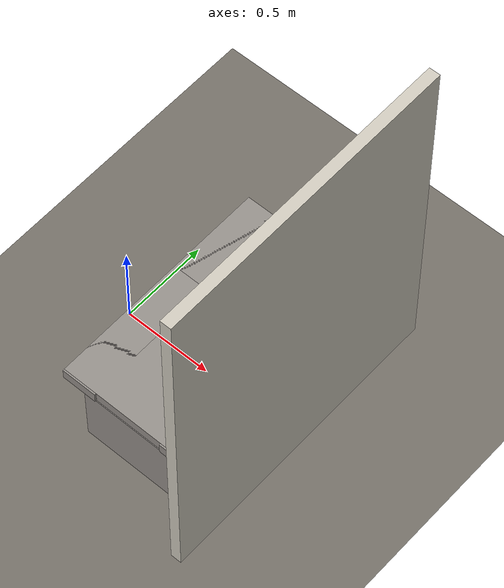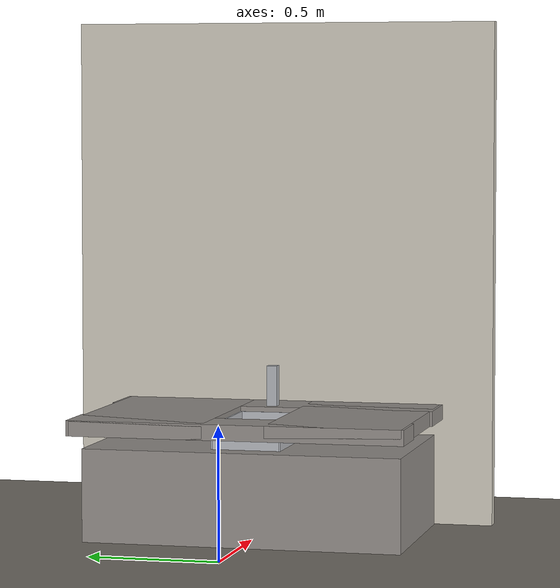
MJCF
<mujoco model="real_env_4_sink">
  <compiler angle="radian" autolimits="true" boundmass="0" balanceinertia="true"/>
  <option impratio="10" gravity="0 0 -9.8" integrator="implicitfast" cone="elliptic" jacobian="sparse" noslip_iterations="4">
    <flag multiccd="enable" contact="enable" warmstart="enable"/>
  </option>
  <size njmax="8000" nconmax="8000"/>
  <visual><global offwidth="1280" offheight="720"/><map znear="0.001"/>
    <headlight ambient="0.42 0.42 0.42" diffuse="0.55 0.55 0.55"/></visual>
  <asset>
    <texture name="woodtex" type="2d" builtin="flat" rgb1="0.58 0.56 0.54" width="32" height="32"/>
    <material name="wood" texture="woodtex" reflectance="0.05"/>
    <texture name="wood2tex" type="2d" builtin="flat" rgb1="0.42 0.40 0.38" width="32" height="32"/>
    <material name="wood2" texture="wood2tex" reflectance="0.05"/>
    <texture name="floortex" type="2d" builtin="checker" rgb1="0.49 0.47 0.44" rgb2="0.42 0.40 0.37" width="300" height="300"/>
    <material name="floormat" texture="floortex" texrepeat="10 10" reflectance="0.05"/>
  </asset>
  <default>
    <default class="furniture">
      <geom contype="8" conaffinity="15" group="0" friction="0.9 0.9 0.001"
            solref="0.02 1" solimp="0.998 0.998 0.001" density="700" material="wood"/>
    </default>
    <default class="furniture2">
      <geom contype="8" conaffinity="15" group="0" friction="0.9 0.9 0.001"
            solref="0.02 1" solimp="0.998 0.998 0.001" density="700" material="wood2"/>
    </default>
  </default>
  <worldbody>
    <light pos="0.3 0.5 2.6" dir="0 0 -1" diffuse="0.65 0.65 0.65"/>
    <light pos="-0.8 -0.8 2.2" dir="0.3 0.3 -1" diffuse="0.3 0.3 0.3"/>
    <geom name="floor" type="plane" size="5 5 0.1" pos="0 0 0" material="floormat" contype="8" conaffinity="15"/>
    <geom name="counter_top_l" type="box" pos="0.62 0.38 0.45" size="0.42 0.26 0.03" class="furniture"/>
    <geom name="counter_top_r" type="box" pos="0.62 -0.38 0.45" size="0.42 0.26 0.03" class="furniture"/>
    <geom name="counter_top_back" type="box" pos="0.92 0 0.45" size="0.12 0.65 0.03" class="furniture"/>
    <geom name="counter_top_front" type="box" pos="0.3 0 0.45" size="0.1 0.65 0.03" class="furniture"/>
    <geom name="counter_body" type="box" pos="0.66 0 0.18" size="0.36 0.62 0.18" class="furniture"/>
    <geom name="basin_floor" type="box" pos="0.61 0 0.335" size="0.21 0.13 0.015" contype="8" conaffinity="15" rgba="0.72 0.73 0.75 1"/>
    <geom name="basin_wall_l" type="box" pos="0.61 0.125 0.4" size="0.21 0.012 0.06" contype="8" conaffinity="15" rgba="0.72 0.73 0.75 1"/>
    <geom name="basin_wall_r" type="box" pos="0.61 -0.125 0.4" size="0.21 0.012 0.06" contype="8" conaffinity="15" rgba="0.72 0.73 0.75 1"/>
    <geom name="basin_wall_b" type="box" pos="0.81 0 0.4" size="0.012 0.13 0.06" contype="8" conaffinity="15" rgba="0.72 0.73 0.75 1"/>
    <geom name="basin_wall_f" type="box" pos="0.41 0 0.4" size="0.012 0.13 0.06" contype="8" conaffinity="15" rgba="0.72 0.73 0.75 1"/>
    <geom name="faucet" type="box" pos="0.85 0 0.55" size="0.02 0.02 0.09" contype="8" conaffinity="15" rgba="0.70 0.71 0.73 1"/>
    <geom name="backsplash" type="box" pos="1.07 0 1.0" size="0.03 0.85 1.0" contype="8" conaffinity="15" rgba="0.81 0.79 0.74 1"/>
    <site name="target_spot" pos="0.58 0.0 0.36" size="0.01" rgba="0 0 0 0"/>
  </worldbody>
</mujoco>
